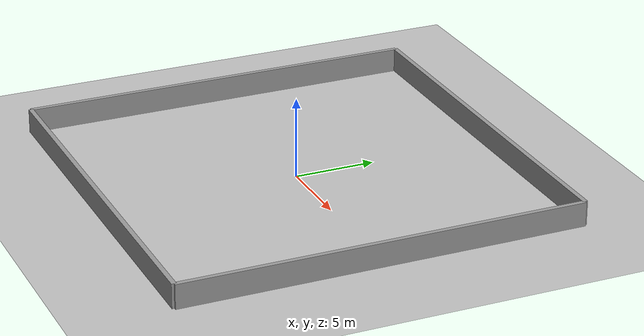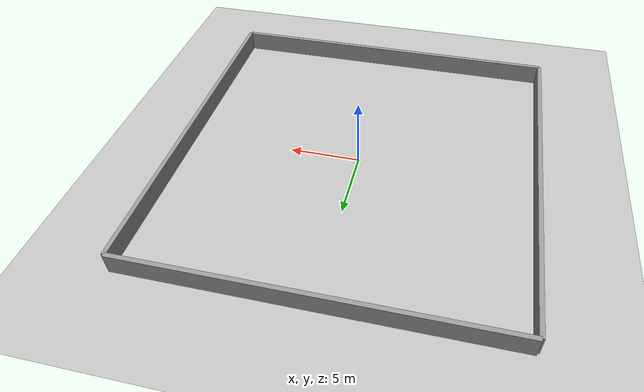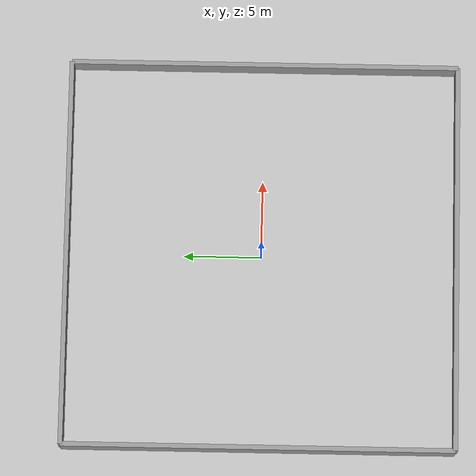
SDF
<?xml version="1.0" ?>
<sdf version="1.8">
  <world name="default">

    <!-- ── Physics: 1 kHz fixed-step ── -->
    <physics name="1ms" type="ignored">
      <max_step_size>0.001</max_step_size>
      <real_time_factor>1.0</real_time_factor>
    </physics>

    <!-- ── RGL GPU LiDAR scene manager (required for Ouster RGL sensor) ── -->
    <plugin name='rgl::RGLServerPluginManager' filename='RGLServerPluginManager'>
      <do_ignore_entities_in_lidar_link>true</do_ignore_entities_in_lidar_link>
    </plugin>

    <!-- ── Required Ignition Fortress system plugins ── -->
    <plugin filename="ignition-gazebo-physics-system"
            name="ignition::gazebo::systems::Physics"/>
    <!-- UserCommands enables /world/default/create and /world/default/remove -->
    <plugin filename="ignition-gazebo-user-commands-system"
            name="ignition::gazebo::systems::UserCommands"/>
    <plugin filename="ignition-gazebo-scene-broadcaster-system"
            name="ignition::gazebo::systems::SceneBroadcaster"/>
    <plugin filename="ignition-gazebo-sensors-system"
            name="ignition::gazebo::systems::Sensors">
      <render_engine>ogre2</render_engine>
    </plugin>
    <plugin filename="ignition-gazebo-contact-system"
            name="ignition::gazebo::systems::Contact"/>

    <!-- DRL obstacle motion plugin: receives /drl/model_poses from environment.py
         and applies all poses directly via ECM — no blocking service calls. -->
    <plugin filename="DrlModelPosePlugin" name="drl::DrlModelPosePlugin"/>

    <!-- ── Sunlight ── -->
    <light name="sun" type="directional">
      <cast_shadows>true</cast_shadows>
      <pose>0 0 10 0 0 0</pose>
      <diffuse>0.8 0.8 0.8 1</diffuse>
      <specular>0.2 0.2 0.2 1</specular>
      <attenuation>
        <range>1000</range>
        <constant>0.9</constant>
        <linear>0.01</linear>
        <quadratic>0.001</quadratic>
      </attenuation>
      <direction>-0.5 0.1 -0.9</direction>
    </light>

    <!-- ── Ground plane (50 × 50 m, centred) — covers the 25 × 25 arena plus the
         out-of-arena obstacle parking ring (|xy| up to ~18 m). ── -->
    <model name="ground_plane">
      <static>true</static>
      <link name="link">
        <collision name="collision">
          <geometry>
            <plane>
              <normal>0 0 1</normal>
              <size>50 50</size>
            </plane>
          </geometry>
          <surface>
            <friction>
              <ode><mu>0.9</mu><mu2>0.9</mu2></ode>
            </friction>
          </surface>
        </collision>
        <visual name="visual">
          <geometry>
            <plane>
              <normal>0 0 1</normal>
              <size>50 50</size>
            </plane>
          </geometry>
          <material>
            <ambient>0.75 0.75 0.75 1</ambient>
            <diffuse>0.75 0.75 0.75 1</diffuse>
            <specular>0.2 0.2 0.2 1</specular>
          </material>
        </visual>
      </link>
    </model>

    <!--
      ── Boundary walls — each is 25 m long, 0.3 m thick, 1.5 m tall ──
      Centred on the arena (wall mid-plane at ±12.5 m).
    -->

    <!-- North wall  (y = +12.5) -->
    <model name="wall_north">
      <static>true</static>
      <pose>0 12.5 0.75 0 0 0</pose>
      <link name="link">
        <collision name="collision">
          <geometry><box><size>25.0 0.3 1.5</size></box></geometry>
        </collision>
        <visual name="visual">
          <geometry><box><size>25.0 0.3 1.5</size></box></geometry>
          <material>
            <ambient>0.5 0.5 0.5 1</ambient>
            <diffuse>0.6 0.6 0.6 1</diffuse>
          </material>
        </visual>
      </link>
    </model>

    <!-- South wall  (y = −12.5) -->
    <model name="wall_south">
      <static>true</static>
      <pose>0 -12.5 0.75 0 0 0</pose>
      <link name="link">
        <collision name="collision">
          <geometry><box><size>25.0 0.3 1.5</size></box></geometry>
        </collision>
        <visual name="visual">
          <geometry><box><size>25.0 0.3 1.5</size></box></geometry>
          <material>
            <ambient>0.5 0.5 0.5 1</ambient>
            <diffuse>0.6 0.6 0.6 1</diffuse>
          </material>
        </visual>
      </link>
    </model>

    <!-- East wall  (x = +12.5) -->
    <model name="wall_east">
      <static>true</static>
      <pose>12.5 0 0.75 0 0 0</pose>
      <link name="link">
        <collision name="collision">
          <geometry><box><size>0.3 25.0 1.5</size></box></geometry>
        </collision>
        <visual name="visual">
          <geometry><box><size>0.3 25.0 1.5</size></box></geometry>
          <material>
            <ambient>0.5 0.5 0.5 1</ambient>
            <diffuse>0.6 0.6 0.6 1</diffuse>
          </material>
        </visual>
      </link>
    </model>

    <!-- West wall  (x = −12.5) -->
    <model name="wall_west">
      <static>true</static>
      <pose>-12.5 0 0.75 0 0 0</pose>
      <link name="link">
        <collision name="collision">
          <geometry><box><size>0.3 25.0 1.5</size></box></geometry>
        </collision>
        <visual name="visual">
          <geometry><box><size>0.3 25.0 1.5</size></box></geometry>
          <material>
            <ambient>0.5 0.5 0.5 1</ambient>
            <diffuse>0.6 0.6 0.6 1</diffuse>
          </material>
        </visual>
      </link>
    </model>

  </world>
</sdf>
